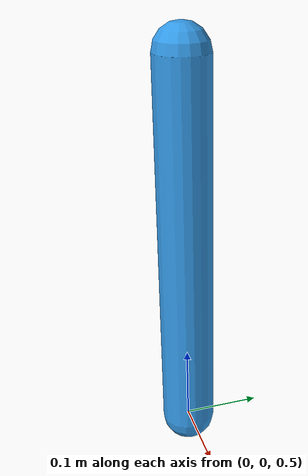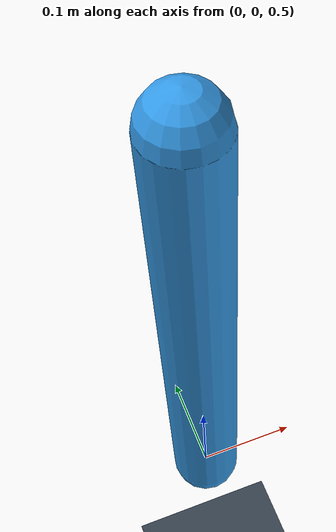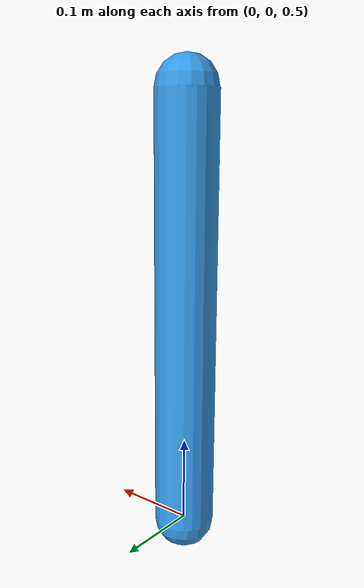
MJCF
<mujoco model="mjSpec generated pendulum">
  <worldbody>
    <light pos="0 -2 3"/>
    <geom type="plane" size="2 2 .1" rgba=".2 .25 .3 1"/>
    <body name="pendulum" pos="0 0 1">
      <joint name="hinge" type="hinge" axis="0 1 0" damping=".05"/>
      <geom name="rod" type="capsule" fromto="0 0 0 0 0 -.5"
            size=".035" mass="1" rgba=".2 .6 .9 1"/>
    </body>
  </worldbody>
</mujoco>
